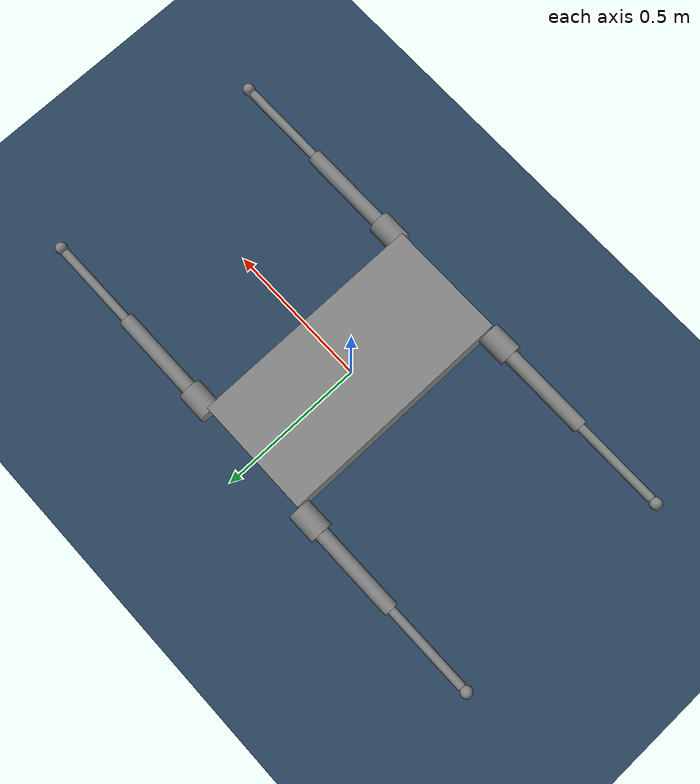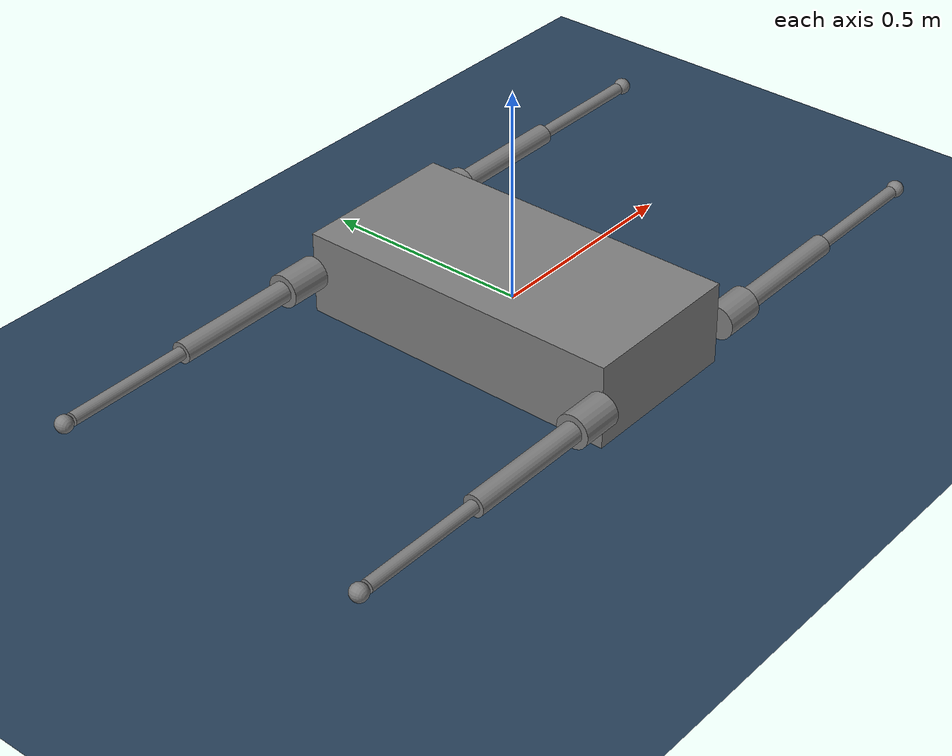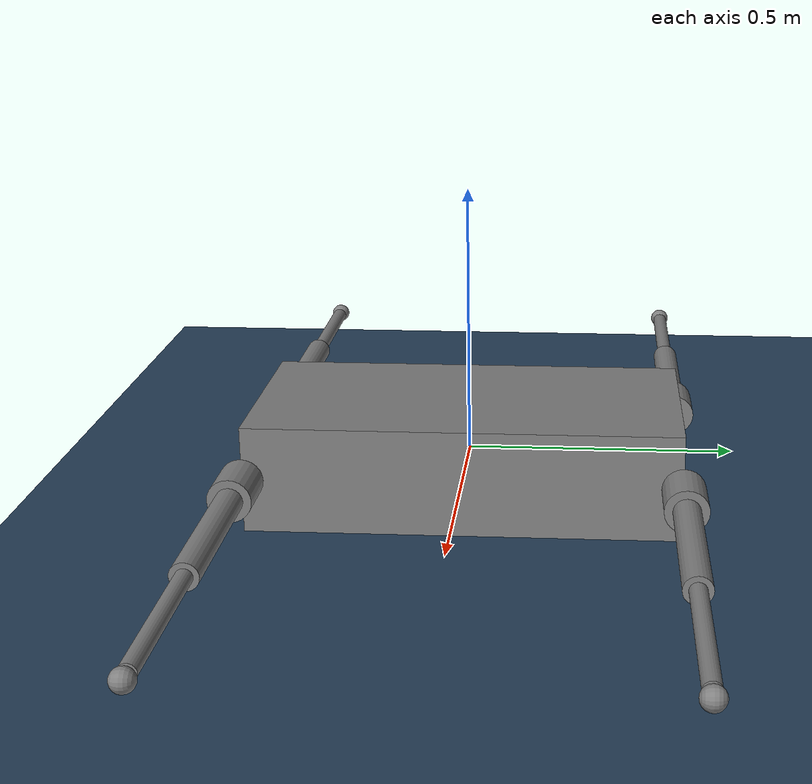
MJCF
<mujoco model="grace">
    <asset>
        <texture type="skybox" builtin="gradient" rgb1="0.3 0.5 0.7" rgb2="0 0 0" width="512" height="3072"/>
        <texture type="2d" name="groundplane" builtin="checker" mark="edge" rgb1="0.2 0.3 0.4" rgb2="0.1 0.2 0.3"
                 markrgb="0.8 0.8 0.8" width="300" height="300"/>
        <material name="groundplane" texture="groundplane" texuniform="true" texrepeat="5 5" reflectance="0.2"/>
    </asset>

    <extension>
        <plugin plugin="mujoco.pid">
            <instance name="pid_shoulder_1">
                <config key="kp" value="40.0"/>
                <config key="ki" value="40"/>
                <config key="kd" value="4"/>
                <config key="slewmax" value="3"/>
                <config key="imax" value="10"/>
            </instance>

            <instance name="pid_shoulder_2">
                <config key="kp" value="40.0"/>
                <config key="ki" value="40"/>
                <config key="kd" value="4"/>
                <config key="slewmax" value="3"/>
                <config key="imax" value="10"/>
            </instance>

            <instance name="pid_elbow">
                <config key="kp" value="100.0"/>
                <config key="ki" value="40"/>
                <config key="kd" value="4"/>
                <config key="slewmax" value="3"/>
                <config key="imax" value="10"/>
            </instance>

        </plugin>
    </extension>

    <worldbody>
        <light pos="0 0 1.5" dir="0 0 -1" directional="true"/>
        <geom name="floor" pos="0 0 -0.2" size="0 0 0.05" type="plane" material="groundplane" friction="0.8 0 0"/>

        <body name="grace">
            <freejoint/>
            <geom type="box" size="0.2 0.4 0.1" pos="0 0 0" mass="10"/>
            <body name="LF-HAA" pos="-0.2 0.4 0">
                <geom size="0.04 0.05" pos="-0.05 0 0" euler="0 90 0" type="cylinder" mass="1.27737"/>
                <joint name="grace_LF-HAA" pos="0 0 0" axis="0 0 1" range="-90 0"/>
                <body name="LF-HFE" pos="-0.1 0 0" euler="90 0 90 ">
                    <geom size="0.025 0.1515" pos="0 0.1515 0" euler="90 0 0" type="cylinder" mass="0.400571"/>
                    <joint name="LF-HAA_LF-HFE" pos="0 0 0" axis="0 0 1" range="-90 90"/>
                    <body name="LF-KFE" pos="0 0.303 0">
                        <geom size="0.015 0.15" pos="0 0.15 0" quat="0.707107 0.707107 0 0" type="cylinder"
                              mass="0.768043"/>
                        <joint name="LF-HFE_LF-KFE" pos="0 0 0" axis="0 0 1" range="-90 90"/>
                        <body name="LF-FOOT" pos="0 0.32 0">
                            <geom type="sphere" size="0.02 0" pos="0 0 0" euler="0 0 0" mass="0.1"/>
                        </body>
                    </body>
                </body>
            </body>

            <body name="LR-HAA" pos="0.2 0.4 0" euler="0 0 180">
                <geom size="0.04 0.05" pos="-0.05 0 0" euler="0 90 0" type="cylinder" mass="1.27737"/>
                <joint name="grace_LR-HAA" pos="0 0 0" axis="0 0 1" range="-90 90"/>
                <body name="LR-HFE" pos="-0.1 0 0" euler="90 0 90 ">
                    <geom size="0.025 0.1515" pos="0 0.1515 0" euler="90 0 0" type="cylinder" mass="0.400571"/>
                    <joint name="LR-HAA_LR-HFE" pos="0 0 0" axis="0 0 1" range="-90 90"/>
                    <body name="LR-KFE" pos="0 0.303 0">
                        <geom size="0.015 0.15" pos="0 0.15 0" quat="0.707107 0.707107 0 0" type="cylinder"
                              mass="0.768043"/>
                        <joint name="LR-HFE_LR-KFE" pos="0 0 0" axis="0 0 1" range="-90 90"/>
                        <body name="LR-FOOT" pos="0 0.32 0">
                            <geom type="sphere" size="0.02 0" pos="0 0 0" euler="0 0 0" mass="0.1"/>
                        </body>
                    </body>
                </body>
            </body>

            <body name="RF-HAA" pos="-0.2 -0.4 0">
                <geom size="0.04 0.05" pos="-0.05 0 0" euler="0 90 0" type="cylinder" mass="1.27737"/>
                <joint name="grace_RF-HAA" pos="0 0 0" axis="0 0 1" range="0 90"/>
                <body name="RF-HFE" pos="-0.1 0 0" euler="90 0 90 ">
                    <geom size="0.025 0.1515" pos="0 0.1515 0" euler="90 0 0" type="cylinder" mass="0.400571"/>
                    <joint name="RF-HAA_RF-HFE" pos="0 0 0" axis="0 0 1" range="-90 90"/>
                    <body name="RF-KFE" pos="0 0.303 0">
                        <geom size="0.015 0.15" pos="0 0.15 0" quat="0.707107 0.707107 0 0" type="cylinder"
                              mass="0.768043"/>
                        <joint name="RF-HFE_RF-KFE" pos="0 0 0" axis="0 0 1" range="-90 90"/>
                        <body name="RF-FOOT" pos="0 0.32 0">
                            <geom type="sphere" size="0.02 0" pos="0 0 0" euler="0 0 0" mass="0.1" friction="0.2 0 0"/>
                        </body>
                    </body>
                </body>
            </body>

            <body name="RR-HAA" pos="0.2 -0.4 0" euler="0 0 180">
                <geom size="0.04 0.05" pos="-0.05 0 0" euler="0 90 0" type="cylinder" mass="1.27737"/>
                <joint name="grace_RR-HAA" pos="0 0 0" axis="0 0 1" range="-90 90"/>
                <body name="RR-HFE" pos="-0.1 0 0" euler="90 0 90 ">
                    <geom size="0.025 0.1515" pos="0 0.1515 0" euler="90 0 0" type="cylinder" mass="0.400571"/>
                    <joint name="RR-HAA_RR-HFE" pos="0 0 0" axis="0 0 1" range="-90 90"/>
                    <body name="RR-KFE" pos="0 0.303 0">
                        <geom size="0.015 0.15" pos="0 0.15 0" quat="0.707107 0.707107 0 0" type="cylinder"
                              mass="0.768043"/>
                        <joint name="RR-HFE_RR-KFE" pos="0 0 0" axis="0 0 1" range="-90 90"/>
                        <body name="RR-FOOT" pos="0 0.32 0">
                            <geom type="sphere" size="0.02 0" pos="0 0 0" euler="0 0 0" mass="0.1" friction="0.8 0 0"/>
                        </body>
                    </body>
                </body>
            </body>
        </body>
    </worldbody>

    <actuator>
        <plugin joint="grace_LF-HAA" plugin="mujoco.pid" instance="pid_shoulder_1" actdim="2"/>
        <plugin joint="LF-HAA_LF-HFE" plugin="mujoco.pid" instance="pid_shoulder_2" actdim="2"/>
        <plugin joint="LF-HFE_LF-KFE" plugin="mujoco.pid" instance="pid_elbow" actdim="2"/>

        <plugin joint="grace_LR-HAA" plugin="mujoco.pid" instance="pid_shoulder_1" actdim="2"/>
        <plugin joint="LR-HAA_LR-HFE" plugin="mujoco.pid" instance="pid_shoulder_2" actdim="2"/>
        <plugin joint="LR-HFE_LR-KFE" plugin="mujoco.pid" instance="pid_elbow" actdim="2"/>

        <plugin joint="grace_RF-HAA" plugin="mujoco.pid" instance="pid_shoulder_1" actdim="2"/>
        <plugin joint="RF-HAA_RF-HFE" plugin="mujoco.pid" instance="pid_shoulder_2" actdim="2"/>
        <plugin joint="RF-HFE_RF-KFE" plugin="mujoco.pid" instance="pid_elbow" actdim="2"/>

        <plugin joint="grace_RR-HAA" plugin="mujoco.pid" instance="pid_shoulder_1" actdim="2"/>
        <plugin joint="RR-HAA_RR-HFE" plugin="mujoco.pid" instance="pid_shoulder_2" actdim="2"/>
        <plugin joint="RR-HFE_RR-KFE" plugin="mujoco.pid" instance="pid_elbow" actdim="2"/>

    </actuator>
</mujoco>
